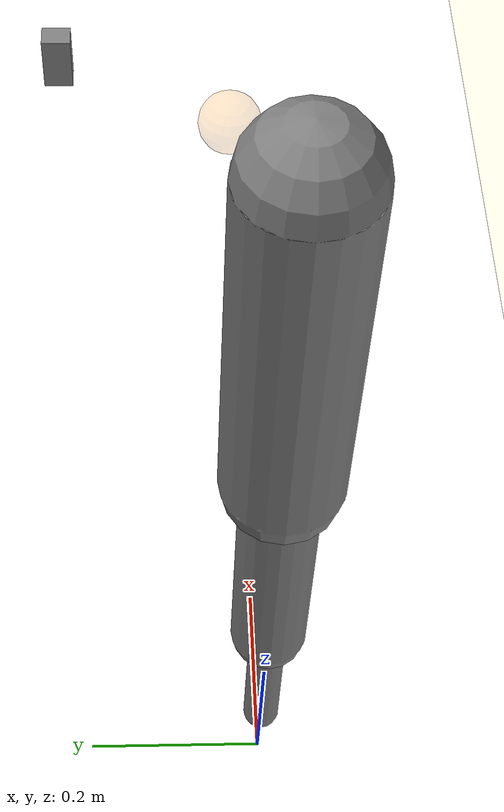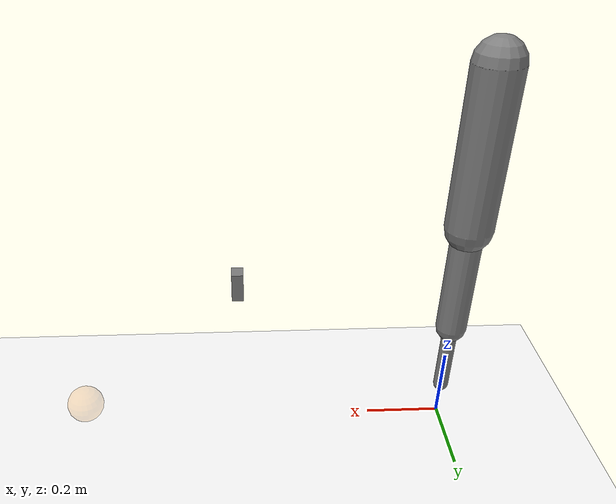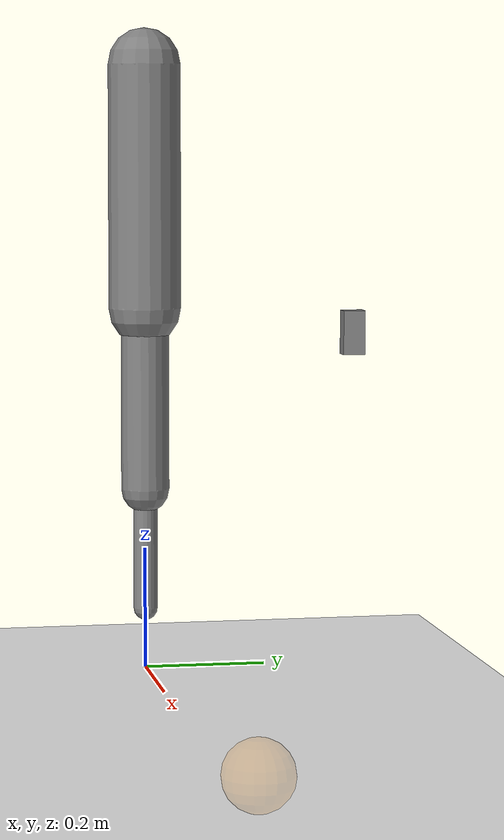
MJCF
<mujoco model="3DOF">
    <option timestep="0.001" gravity="0 0 -9.81" cone="elliptic" />
    <compiler angle="radian" />

    <visual>
        <headlight ambient="0.4 0.4 0.4" diffuse="0.4 0.4 0.4" specular="0.0 0.0 0.0" active="1" />
    </visual>

    <asset>
        <texture builtin="checker" height="512" name="texplane" rgb1=".2 .3 .4" rgb2=".1 .15 .2" type="2d" width="512" />
        <material name="MatPlane" reflectance="0.5" shininess="0.01" specular="0.1" texrepeat="1 1" texture="texplane" texuniform="true" />
    </asset>

    <worldbody>
        <light pos="0 0 1000" castshadow="false" />
        <geom name="ground_plane" type="plane" size="5 5 10" material="MatPlane" rgba="1 1 1 1"/>

        <body name="base_link">
            <geom type="capsule" fromto="0 0 1  0 0 0.6" size="0.06"/>
            <joint name="balljoint" type="ball" pos="0 0 1"/>
            <body name="middle_link">
                <geom type="capsule" fromto="0 0 0.6  0.0 0 0.3" size="0.04"/>
                <joint name="joint1" type="hinge" pos="0 0 0.6" axis="0 1 0"/>
                <body name="end_link">
                    <geom name="EE" type="capsule" fromto="0 0 0.3  0.0 0 0.1" size="0.02"/>
                    <joint name="joint2" type="hinge" pos="0.0 0 0.3" axis="0 1 0"/>
                    <site name="joint2_site" pos="0 0 0" rgba="1 0 0 1" size="0.001" />
                </body>
            </body>
        </body>
        <body name="body_ball" pos="1 0 0.06" >
            <freejoint name="ball_freejoint"/>
            <geom name="ball" type="sphere" size="0.05" rgba="1.0 0.55 0.0 0.2" mass="0.1"/>
        </body>
        <body name="immovable" pos="0.56428 0.221972 0.6">
            <geom type="box" size=".0125 .016 .032" rgba=".5 .5 .5 1" />
            <inertial pos="0 0 0" mass="0.1024" diaginertia="4.369e-5 4.028e-5 1.407e-5"/>
        </body>
    </worldbody>

    <sensor>
        <framepos   name="immovable_pos"  objtype="xbody" objname="immovable" />
        <framequat  name="immovable_quat" objtype="xbody" objname="immovable" />
        <framexaxis name="framex_EE"      objtype="site"  objname="joint2_site" />

        <velocimeter name="vel_EE" site="joint2_site" />
        <jointvel    name="vel_joint2"  joint="joint2" />

        <subtreecom  name="subtree_end_link" body="end_link" />
    </sensor>
</mujoco>
